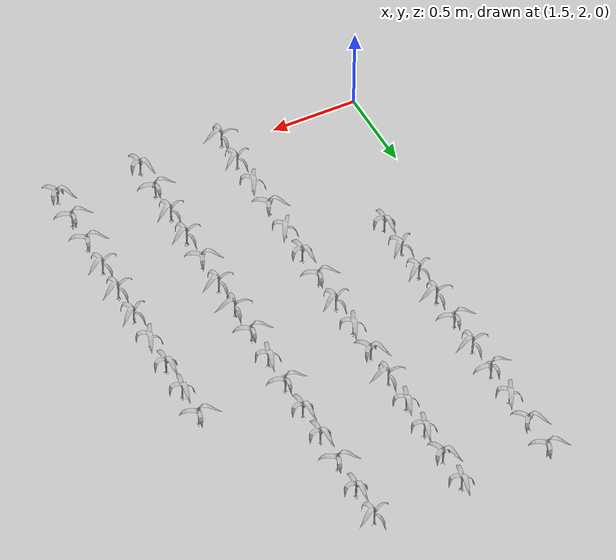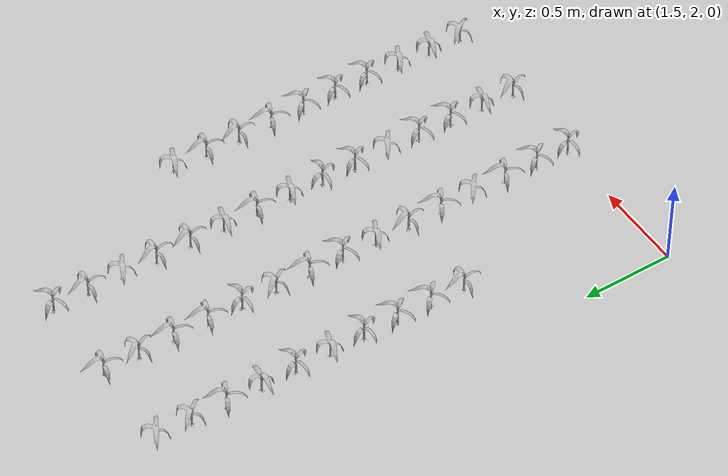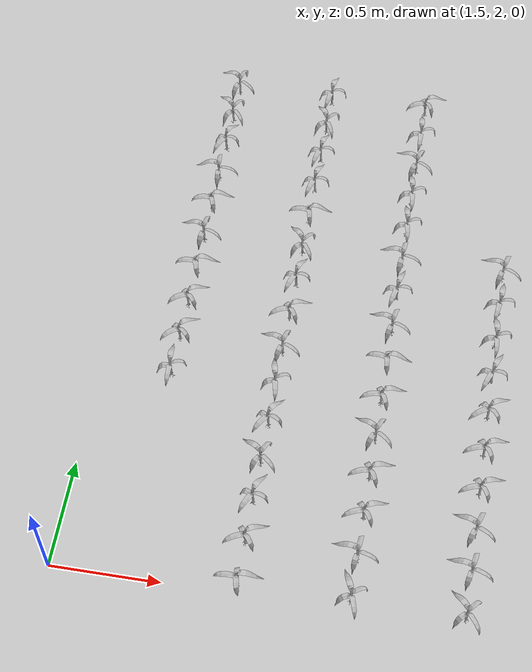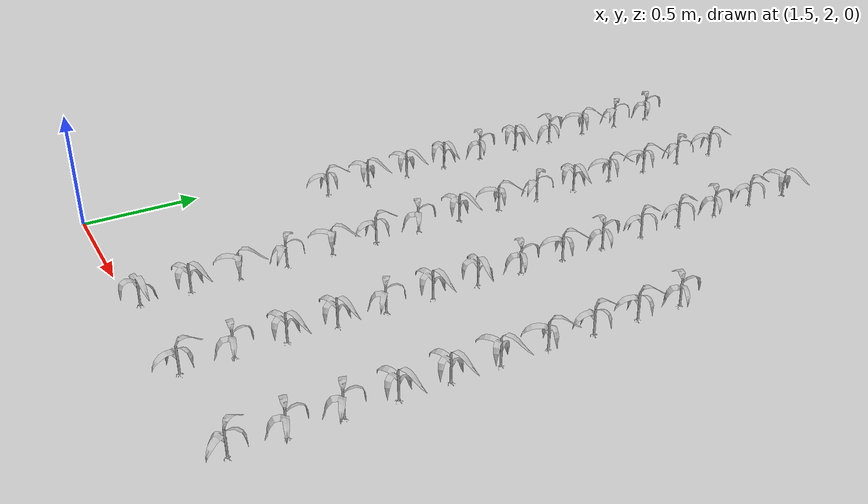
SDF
<sdf version="1.7">
 <world name="default">
  <model name="maize_1.8369094047028893_3.000000000000001">
   <static>1</static>
   <link name="link">
    <inertial>
     <mass>0.2</mass>
     <inertia>
      <ixx>0.166667</ixx>
      <ixy>0</ixy>
      <ixz>0</ixz>
      <iyy>0.166667</iyy>
      <iyz>0</iyz>
      <izz>0.166667</izz>
     </inertia>
    </inertial>
    <collision name="collision">
     <geometry><mesh><uri>model://corn_3/meshes/corn.dae</uri><scale>0.25 0.25 0.25</scale></mesh></geometry>
     <surface>
      <friction><ode><mu>0</mu><mu2>0</mu2></ode></friction>
      <contact><ode><kp>0</kp><kd>0</kd><max_vel>0</max_vel><min_depth>0.002</min_depth></ode></contact>
     </surface>
    </collision>
    <visual name="visual">
     <geometry><mesh><uri>model://corn_3/meshes/corn.dae</uri><scale>0.25 0.25 0.25</scale></mesh></geometry>
    </visual>
    <velocity_decay><linear>0</linear><angular>0</angular></velocity_decay>
   </link>
   <pose>1.83691 3 0.05 0 -0 1.66744</pose>
  </model>
  <model name="maize_1.8369094047028893_3.1950000000000003">
   <static>1</static>
   <link name="link">
    <inertial>
     <mass>0.2</mass>
     <inertia>
      <ixx>0.166667</ixx>
      <ixy>0</ixy>
      <ixz>0</ixz>
      <iyy>0.166667</iyy>
      <iyz>0</iyz>
      <izz>0.166667</izz>
     </inertia>
    </inertial>
    <collision name="collision">
     <geometry><mesh><uri>model://corn_3/meshes/corn.dae</uri><scale>0.25 0.25 0.25</scale></mesh></geometry>
     <surface>
      <friction><ode><mu>0</mu><mu2>0</mu2></ode></friction>
      <contact><ode><kp>0</kp><kd>0</kd><max_vel>0</max_vel><min_depth>0.002</min_depth></ode></contact>
     </surface>
    </collision>
    <visual name="visual">
     <geometry><mesh><uri>model://corn_3/meshes/corn.dae</uri><scale>0.25 0.25 0.25</scale></mesh></geometry>
    </visual>
    <velocity_decay><linear>0</linear><angular>0</angular></velocity_decay>
   </link>
   <pose>1.83691 3.195 0.05 0 -0 0.756437</pose>
  </model>
  <model name="maize_1.8369094047028893_3.3899999999999997">
   <static>1</static>
   <link name="link">
    <inertial>
     <mass>0.2</mass>
     <inertia>
      <ixx>0.166667</ixx>
      <ixy>0</ixy>
      <ixz>0</ixz>
      <iyy>0.166667</iyy>
      <iyz>0</iyz>
      <izz>0.166667</izz>
     </inertia>
    </inertial>
    <collision name="collision">
     <geometry><mesh><uri>model://corn_3/meshes/corn.dae</uri><scale>0.25 0.25 0.25</scale></mesh></geometry>
     <surface>
      <friction><ode><mu>0</mu><mu2>0</mu2></ode></friction>
      <contact><ode><kp>0</kp><kd>0</kd><max_vel>0</max_vel><min_depth>0.002</min_depth></ode></contact>
     </surface>
    </collision>
    <visual name="visual">
     <geometry><mesh><uri>model://corn_3/meshes/corn.dae</uri><scale>0.25 0.25 0.25</scale></mesh></geometry>
    </visual>
    <velocity_decay><linear>0</linear><angular>0</angular></velocity_decay>
   </link>
   <pose>1.83691 3.39 0.05 0 -0 0.617165</pose>
  </model>
  <model name="maize_1.8369094047028893_3.585">
   <static>1</static>
   <link name="link">
    <inertial>
     <mass>0.2</mass>
     <inertia>
      <ixx>0.166667</ixx>
      <ixy>0</ixy>
      <ixz>0</ixz>
      <iyy>0.166667</iyy>
      <iyz>0</iyz>
      <izz>0.166667</izz>
     </inertia>
    </inertial>
    <collision name="collision">
     <geometry><mesh><uri>model://corn_3/meshes/corn.dae</uri><scale>0.25 0.25 0.25</scale></mesh></geometry>
     <surface>
      <friction><ode><mu>0</mu><mu2>0</mu2></ode></friction>
      <contact><ode><kp>0</kp><kd>0</kd><max_vel>0</max_vel><min_depth>0.002</min_depth></ode></contact>
     </surface>
    </collision>
    <visual name="visual">
     <geometry><mesh><uri>model://corn_3/meshes/corn.dae</uri><scale>0.25 0.25 0.25</scale></mesh></geometry>
    </visual>
    <velocity_decay><linear>0</linear><angular>0</angular></velocity_decay>
   </link>
   <pose>1.83691 3.585 0.05 0 -0 0.19842</pose>
  </model>
  <model name="maize_1.8369094047028893_3.7800000000000002">
   <static>1</static>
   <link name="link">
    <inertial>
     <mass>0.2</mass>
     <inertia>
      <ixx>0.166667</ixx>
      <ixy>0</ixy>
      <ixz>0</ixz>
      <iyy>0.166667</iyy>
      <iyz>0</iyz>
      <izz>0.166667</izz>
     </inertia>
    </inertial>
    <collision name="collision">
     <geometry><mesh><uri>model://corn_3/meshes/corn.dae</uri><scale>0.25 0.25 0.25</scale></mesh></geometry>
     <surface>
      <friction><ode><mu>0</mu><mu2>0</mu2></ode></friction>
      <contact><ode><kp>0</kp><kd>0</kd><max_vel>0</max_vel><min_depth>0.002</min_depth></ode></contact>
     </surface>
    </collision>
    <visual name="visual">
     <geometry><mesh><uri>model://corn_3/meshes/corn.dae</uri><scale>0.25 0.25 0.25</scale></mesh></geometry>
    </visual>
    <velocity_decay><linear>0</linear><angular>0</angular></velocity_decay>
   </link>
   <pose>1.83691 3.78 0.05 0 -0 2.90522</pose>
  </model>
  <model name="maize_1.8369094047028893_3.9750000000000005">
   <static>1</static>
   <link name="link">
    <inertial>
     <mass>0.2</mass>
     <inertia>
      <ixx>0.166667</ixx>
      <ixy>0</ixy>
      <ixz>0</ixz>
      <iyy>0.166667</iyy>
      <iyz>0</iyz>
      <izz>0.166667</izz>
     </inertia>
    </inertial>
    <collision name="collision">
     <geometry><mesh><uri>model://corn_3/meshes/corn.dae</uri><scale>0.25 0.25 0.25</scale></mesh></geometry>
     <surface>
      <friction><ode><mu>0</mu><mu2>0</mu2></ode></friction>
      <contact><ode><kp>0</kp><kd>0</kd><max_vel>0</max_vel><min_depth>0.002</min_depth></ode></contact>
     </surface>
    </collision>
    <visual name="visual">
     <geometry><mesh><uri>model://corn_3/meshes/corn.dae</uri><scale>0.25 0.25 0.25</scale></mesh></geometry>
    </visual>
    <velocity_decay><linear>0</linear><angular>0</angular></velocity_decay>
   </link>
   <pose>1.83691 3.975 0.05 0 -0 0.26395</pose>
  </model>
  <model name="maize_1.8369094047028893_4.170000000000001">
   <static>1</static>
   <link name="link">
    <inertial>
     <mass>0.2</mass>
     <inertia>
      <ixx>0.166667</ixx>
      <ixy>0</ixy>
      <ixz>0</ixz>
      <iyy>0.166667</iyy>
      <iyz>0</iyz>
      <izz>0.166667</izz>
     </inertia>
    </inertial>
    <collision name="collision">
     <geometry><mesh><uri>model://corn_3/meshes/corn.dae</uri><scale>0.25 0.25 0.25</scale></mesh></geometry>
     <surface>
      <friction><ode><mu>0</mu><mu2>0</mu2></ode></friction>
      <contact><ode><kp>0</kp><kd>0</kd><max_vel>0</max_vel><min_depth>0.002</min_depth></ode></contact>
     </surface>
    </collision>
    <visual name="visual">
     <geometry><mesh><uri>model://corn_3/meshes/corn.dae</uri><scale>0.25 0.25 0.25</scale></mesh></geometry>
    </visual>
    <velocity_decay><linear>0</linear><angular>0</angular></velocity_decay>
   </link>
   <pose>1.83691 4.17 0.05 0 -0 3.13841</pose>
  </model>
  <model name="maize_1.8369094047028893_4.365000000000001">
   <static>1</static>
   <link name="link">
    <inertial>
     <mass>0.2</mass>
     <inertia>
      <ixx>0.166667</ixx>
      <ixy>0</ixy>
      <ixz>0</ixz>
      <iyy>0.166667</iyy>
      <iyz>0</iyz>
      <izz>0.166667</izz>
     </inertia>
    </inertial>
    <collision name="collision">
     <geometry><mesh><uri>model://corn_3/meshes/corn.dae</uri><scale>0.25 0.25 0.25</scale></mesh></geometry>
     <surface>
      <friction><ode><mu>0</mu><mu2>0</mu2></ode></friction>
      <contact><ode><kp>0</kp><kd>0</kd><max_vel>0</max_vel><min_depth>0.002</min_depth></ode></contact>
     </surface>
    </collision>
    <visual name="visual">
     <geometry><mesh><uri>model://corn_3/meshes/corn.dae</uri><scale>0.25 0.25 0.25</scale></mesh></geometry>
    </visual>
    <velocity_decay><linear>0</linear><angular>0</angular></velocity_decay>
   </link>
   <pose>1.83691 4.365 0.05 0 -0 1.15996</pose>
  </model>
  <model name="maize_1.8369094047028893_4.56">
   <static>1</static>
   <link name="link">
    <inertial>
     <mass>0.2</mass>
     <inertia>
      <ixx>0.166667</ixx>
      <ixy>0</ixy>
      <ixz>0</ixz>
      <iyy>0.166667</iyy>
      <iyz>0</iyz>
      <izz>0.166667</izz>
     </inertia>
    </inertial>
    <collision name="collision">
     <geometry><mesh><uri>model://corn_3/meshes/corn.dae</uri><scale>0.25 0.25 0.25</scale></mesh></geometry>
     <surface>
      <friction><ode><mu>0</mu><mu2>0</mu2></ode></friction>
      <contact><ode><kp>0</kp><kd>0</kd><max_vel>0</max_vel><min_depth>0.002</min_depth></ode></contact>
     </surface>
    </collision>
    <visual name="visual">
     <geometry><mesh><uri>model://corn_3/meshes/corn.dae</uri><scale>0.25 0.25 0.25</scale></mesh></geometry>
    </visual>
    <velocity_decay><linear>0</linear><angular>0</angular></velocity_decay>
   </link>
   <pose>1.83691 4.56 0.05 0 -0 2.37544</pose>
  </model>
  <model name="maize_1.8369094047028893_4.755">
   <static>1</static>
   <link name="link">
    <inertial>
     <mass>0.2</mass>
     <inertia>
      <ixx>0.166667</ixx>
      <ixy>0</ixy>
      <ixz>0</ixz>
      <iyy>0.166667</iyy>
      <iyz>0</iyz>
      <izz>0.166667</izz>
     </inertia>
    </inertial>
    <collision name="collision">
     <geometry><mesh><uri>model://corn_3/meshes/corn.dae</uri><scale>0.25 0.25 0.25</scale></mesh></geometry>
     <surface>
      <friction><ode><mu>0</mu><mu2>0</mu2></ode></friction>
      <contact><ode><kp>0</kp><kd>0</kd><max_vel>0</max_vel><min_depth>0.002</min_depth></ode></contact>
     </surface>
    </collision>
    <visual name="visual">
     <geometry><mesh><uri>model://corn_3/meshes/corn.dae</uri><scale>0.25 0.25 0.25</scale></mesh></geometry>
    </visual>
    <velocity_decay><linear>0</linear><angular>0</angular></velocity_decay>
   </link>
   <pose>1.83691 4.755 0.05 0 -0 2.69329</pose>
  </model>
  <model name="maize_2.3268572397762357_2.0250000000000004">
   <static>1</static>
   <link name="link">
    <inertial>
     <mass>0.2</mass>
     <inertia>
      <ixx>0.166667</ixx>
      <ixy>0</ixy>
      <ixz>0</ixz>
      <iyy>0.166667</iyy>
      <iyz>0</iyz>
      <izz>0.166667</izz>
     </inertia>
    </inertial>
    <collision name="collision">
     <geometry><mesh><uri>model://corn_3/meshes/corn.dae</uri><scale>0.25 0.25 0.25</scale></mesh></geometry>
     <surface>
      <friction><ode><mu>0</mu><mu2>0</mu2></ode></friction>
      <contact><ode><kp>0</kp><kd>0</kd><max_vel>0</max_vel><min_depth>0.002</min_depth></ode></contact>
     </surface>
    </collision>
    <visual name="visual">
     <geometry><mesh><uri>model://corn_3/meshes/corn.dae</uri><scale>0.25 0.25 0.25</scale></mesh></geometry>
    </visual>
    <velocity_decay><linear>0</linear><angular>0</angular></velocity_decay>
   </link>
   <pose>2.32686 2.025 0.05 0 -0 0.130805</pose>
  </model>
  <model name="maize_2.3268572397762357_2.2200000000000006">
   <static>1</static>
   <link name="link">
    <inertial>
     <mass>0.2</mass>
     <inertia>
      <ixx>0.166667</ixx>
      <ixy>0</ixy>
      <ixz>0</ixz>
      <iyy>0.166667</iyy>
      <iyz>0</iyz>
      <izz>0.166667</izz>
     </inertia>
    </inertial>
    <collision name="collision">
     <geometry><mesh><uri>model://corn_3/meshes/corn.dae</uri><scale>0.25 0.25 0.25</scale></mesh></geometry>
     <surface>
      <friction><ode><mu>0</mu><mu2>0</mu2></ode></friction>
      <contact><ode><kp>0</kp><kd>0</kd><max_vel>0</max_vel><min_depth>0.002</min_depth></ode></contact>
     </surface>
    </collision>
    <visual name="visual">
     <geometry><mesh><uri>model://corn_3/meshes/corn.dae</uri><scale>0.25 0.25 0.25</scale></mesh></geometry>
    </visual>
    <velocity_decay><linear>0</linear><angular>0</angular></velocity_decay>
   </link>
   <pose>2.32686 2.22 0.05 0 -0 0.56625</pose>
  </model>
  <model name="maize_2.3268572397762357_2.415">
   <static>1</static>
   <link name="link">
    <inertial>
     <mass>0.2</mass>
     <inertia>
      <ixx>0.166667</ixx>
      <ixy>0</ixy>
      <ixz>0</ixz>
      <iyy>0.166667</iyy>
      <iyz>0</iyz>
      <izz>0.166667</izz>
     </inertia>
    </inertial>
    <collision name="collision">
     <geometry><mesh><uri>model://corn_3/meshes/corn.dae</uri><scale>0.25 0.25 0.25</scale></mesh></geometry>
     <surface>
      <friction><ode><mu>0</mu><mu2>0</mu2></ode></friction>
      <contact><ode><kp>0</kp><kd>0</kd><max_vel>0</max_vel><min_depth>0.002</min_depth></ode></contact>
     </surface>
    </collision>
    <visual name="visual">
     <geometry><mesh><uri>model://corn_3/meshes/corn.dae</uri><scale>0.25 0.25 0.25</scale></mesh></geometry>
    </visual>
    <velocity_decay><linear>0</linear><angular>0</angular></velocity_decay>
   </link>
   <pose>2.32686 2.415 0.05 0 -0 1.18932</pose>
  </model>
  <model name="maize_2.3268572397762357_2.6100000000000003">
   <static>1</static>
   <link name="link">
    <inertial>
     <mass>0.2</mass>
     <inertia>
      <ixx>0.166667</ixx>
      <ixy>0</ixy>
      <ixz>0</ixz>
      <iyy>0.166667</iyy>
      <iyz>0</iyz>
      <izz>0.166667</izz>
     </inertia>
    </inertial>
    <collision name="collision">
     <geometry><mesh><uri>model://corn_3/meshes/corn.dae</uri><scale>0.25 0.25 0.25</scale></mesh></geometry>
     <surface>
      <friction><ode><mu>0</mu><mu2>0</mu2></ode></friction>
      <contact><ode><kp>0</kp><kd>0</kd><max_vel>0</max_vel><min_depth>0.002</min_depth></ode></contact>
     </surface>
    </collision>
    <visual name="visual">
     <geometry><mesh><uri>model://corn_3/meshes/corn.dae</uri><scale>0.25 0.25 0.25</scale></mesh></geometry>
    </visual>
    <velocity_decay><linear>0</linear><angular>0</angular></velocity_decay>
   </link>
   <pose>2.32686 2.61 0.05 0 -0 2.54223</pose>
  </model>
  <model name="maize_2.3268572397762357_2.8050000000000006">
   <static>1</static>
   <link name="link">
    <inertial>
     <mass>0.2</mass>
     <inertia>
      <ixx>0.166667</ixx>
      <ixy>0</ixy>
      <ixz>0</ixz>
      <iyy>0.166667</iyy>
      <iyz>0</iyz>
      <izz>0.166667</izz>
     </inertia>
    </inertial>
    <collision name="collision">
     <geometry><mesh><uri>model://corn_3/meshes/corn.dae</uri><scale>0.25 0.25 0.25</scale></mesh></geometry>
     <surface>
      <friction><ode><mu>0</mu><mu2>0</mu2></ode></friction>
      <contact><ode><kp>0</kp><kd>0</kd><max_vel>0</max_vel><min_depth>0.002</min_depth></ode></contact>
     </surface>
    </collision>
    <visual name="visual">
     <geometry><mesh><uri>model://corn_3/meshes/corn.dae</uri><scale>0.25 0.25 0.25</scale></mesh></geometry>
    </visual>
    <velocity_decay><linear>0</linear><angular>0</angular></velocity_decay>
   </link>
   <pose>2.32686 2.805 0.05 0 -0 1.06028</pose>
  </model>
  <model name="maize_2.3268572397762357_3.000000000000001">
   <static>1</static>
   <link name="link">
    <inertial>
     <mass>0.2</mass>
     <inertia>
      <ixx>0.166667</ixx>
      <ixy>0</ixy>
      <ixz>0</ixz>
      <iyy>0.166667</iyy>
      <iyz>0</iyz>
      <izz>0.166667</izz>
     </inertia>
    </inertial>
    <collision name="collision">
     <geometry><mesh><uri>model://corn_3/meshes/corn.dae</uri><scale>0.25 0.25 0.25</scale></mesh></geometry>
     <surface>
      <friction><ode><mu>0</mu><mu2>0</mu2></ode></friction>
      <contact><ode><kp>0</kp><kd>0</kd><max_vel>0</max_vel><min_depth>0.002</min_depth></ode></contact>
     </surface>
    </collision>
    <visual name="visual">
     <geometry><mesh><uri>model://corn_3/meshes/corn.dae</uri><scale>0.25 0.25 0.25</scale></mesh></geometry>
    </visual>
    <velocity_decay><linear>0</linear><angular>0</angular></velocity_decay>
   </link>
   <pose>2.32686 3 0.05 0 -0 1.82294</pose>
  </model>
  <model name="maize_2.3268572397762357_3.1950000000000003">
   <static>1</static>
   <link name="link">
    <inertial>
     <mass>0.2</mass>
     <inertia>
      <ixx>0.166667</ixx>
      <ixy>0</ixy>
      <ixz>0</ixz>
      <iyy>0.166667</iyy>
      <iyz>0</iyz>
      <izz>0.166667</izz>
     </inertia>
    </inertial>
    <collision name="collision">
     <geometry><mesh><uri>model://corn_3/meshes/corn.dae</uri><scale>0.25 0.25 0.25</scale></mesh></geometry>
     <surface>
      <friction><ode><mu>0</mu><mu2>0</mu2></ode></friction>
      <contact><ode><kp>0</kp><kd>0</kd><max_vel>0</max_vel><min_depth>0.002</min_depth></ode></contact>
     </surface>
    </collision>
    <visual name="visual">
     <geometry><mesh><uri>model://corn_3/meshes/corn.dae</uri><scale>0.25 0.25 0.25</scale></mesh></geometry>
    </visual>
    <velocity_decay><linear>0</linear><angular>0</angular></velocity_decay>
   </link>
   <pose>2.32686 3.195 0.05 0 -0 2.78875</pose>
  </model>
  <model name="maize_2.3268572397762357_3.3899999999999997">
   <static>1</static>
   <link name="link">
    <inertial>
     <mass>0.2</mass>
     <inertia>
      <ixx>0.166667</ixx>
      <ixy>0</ixy>
      <ixz>0</ixz>
      <iyy>0.166667</iyy>
      <iyz>0</iyz>
      <izz>0.166667</izz>
     </inertia>
    </inertial>
    <collision name="collision">
     <geometry><mesh><uri>model://corn_3/meshes/corn.dae</uri><scale>0.25 0.25 0.25</scale></mesh></geometry>
     <surface>
      <friction><ode><mu>0</mu><mu2>0</mu2></ode></friction>
      <contact><ode><kp>0</kp><kd>0</kd><max_vel>0</max_vel><min_depth>0.002</min_depth></ode></contact>
     </surface>
    </collision>
    <visual name="visual">
     <geometry><mesh><uri>model://corn_3/meshes/corn.dae</uri><scale>0.25 0.25 0.25</scale></mesh></geometry>
    </visual>
    <velocity_decay><linear>0</linear><angular>0</angular></velocity_decay>
   </link>
   <pose>2.32686 3.39 0.05 0 -0 0.509069</pose>
  </model>
  <model name="maize_2.3268572397762357_3.585">
   <static>1</static>
   <link name="link">
    <inertial>
     <mass>0.2</mass>
     <inertia>
      <ixx>0.166667</ixx>
      <ixy>0</ixy>
      <ixz>0</ixz>
      <iyy>0.166667</iyy>
      <iyz>0</iyz>
      <izz>0.166667</izz>
     </inertia>
    </inertial>
    <collision name="collision">
     <geometry><mesh><uri>model://corn_3/meshes/corn.dae</uri><scale>0.25 0.25 0.25</scale></mesh></geometry>
     <surface>
      <friction><ode><mu>0</mu><mu2>0</mu2></ode></friction>
      <contact><ode><kp>0</kp><kd>0</kd><max_vel>0</max_vel><min_depth>0.002</min_depth></ode></contact>
     </surface>
    </collision>
    <visual name="visual">
     <geometry><mesh><uri>model://corn_3/meshes/corn.dae</uri><scale>0.25 0.25 0.25</scale></mesh></geometry>
    </visual>
    <velocity_decay><linear>0</linear><angular>0</angular></velocity_decay>
   </link>
   <pose>2.32686 3.585 0.05 0 -0 1.25415</pose>
  </model>
  <model name="maize_2.3268572397762357_3.7800000000000002">
   <static>1</static>
   <link name="link">
    <inertial>
     <mass>0.2</mass>
     <inertia>
      <ixx>0.166667</ixx>
      <ixy>0</ixy>
      <ixz>0</ixz>
      <iyy>0.166667</iyy>
      <iyz>0</iyz>
      <izz>0.166667</izz>
     </inertia>
    </inertial>
    <collision name="collision">
     <geometry><mesh><uri>model://corn_3/meshes/corn.dae</uri><scale>0.25 0.25 0.25</scale></mesh></geometry>
     <surface>
      <friction><ode><mu>0</mu><mu2>0</mu2></ode></friction>
      <contact><ode><kp>0</kp><kd>0</kd><max_vel>0</max_vel><min_depth>0.002</min_depth></ode></contact>
     </surface>
    </collision>
    <visual name="visual">
     <geometry><mesh><uri>model://corn_3/meshes/corn.dae</uri><scale>0.25 0.25 0.25</scale></mesh></geometry>
    </visual>
    <velocity_decay><linear>0</linear><angular>0</angular></velocity_decay>
   </link>
   <pose>2.32686 3.78 0.05 0 -0 2.25817</pose>
  </model>
  <model name="maize_2.3268572397762357_3.9750000000000005">
   <static>1</static>
   <link name="link">
    <inertial>
     <mass>0.2</mass>
     <inertia>
      <ixx>0.166667</ixx>
      <ixy>0</ixy>
      <ixz>0</ixz>
      <iyy>0.166667</iyy>
      <iyz>0</iyz>
      <izz>0.166667</izz>
     </inertia>
    </inertial>
    <collision name="collision">
     <geometry><mesh><uri>model://corn_3/meshes/corn.dae</uri><scale>0.25 0.25 0.25</scale></mesh></geometry>
     <surface>
      <friction><ode><mu>0</mu><mu2>0</mu2></ode></friction>
      <contact><ode><kp>0</kp><kd>0</kd><max_vel>0</max_vel><min_depth>0.002</min_depth></ode></contact>
     </surface>
    </collision>
    <visual name="visual">
     <geometry><mesh><uri>model://corn_3/meshes/corn.dae</uri><scale>0.25 0.25 0.25</scale></mesh></geometry>
    </visual>
    <velocity_decay><linear>0</linear><angular>0</angular></velocity_decay>
   </link>
   <pose>2.32686 3.975 0.05 0 -0 0.135492</pose>
  </model>
  <model name="maize_2.3268572397762357_4.170000000000001">
   <static>1</static>
   <link name="link">
    <inertial>
     <mass>0.2</mass>
     <inertia>
      <ixx>0.166667</ixx>
      <ixy>0</ixy>
      <ixz>0</ixz>
      <iyy>0.166667</iyy>
      <iyz>0</iyz>
      <izz>0.166667</izz>
     </inertia>
    </inertial>
    <collision name="collision">
     <geometry><mesh><uri>model://corn_3/meshes/corn.dae</uri><scale>0.25 0.25 0.25</scale></mesh></geometry>
     <surface>
      <friction><ode><mu>0</mu><mu2>0</mu2></ode></friction>
      <contact><ode><kp>0</kp><kd>0</kd><max_vel>0</max_vel><min_depth>0.002</min_depth></ode></contact>
     </surface>
    </collision>
    <visual name="visual">
     <geometry><mesh><uri>model://corn_3/meshes/corn.dae</uri><scale>0.25 0.25 0.25</scale></mesh></geometry>
    </visual>
    <velocity_decay><linear>0</linear><angular>0</angular></velocity_decay>
   </link>
   <pose>2.32686 4.17 0.05 0 -0 1.33384</pose>
  </model>
  <model name="maize_2.3268572397762357_4.365000000000001">
   <static>1</static>
   <link name="link">
    <inertial>
     <mass>0.2</mass>
     <inertia>
      <ixx>0.166667</ixx>
      <ixy>0</ixy>
      <ixz>0</ixz>
      <iyy>0.166667</iyy>
      <iyz>0</iyz>
      <izz>0.166667</izz>
     </inertia>
    </inertial>
    <collision name="collision">
     <geometry><mesh><uri>model://corn_3/meshes/corn.dae</uri><scale>0.25 0.25 0.25</scale></mesh></geometry>
     <surface>
      <friction><ode><mu>0</mu><mu2>0</mu2></ode></friction>
      <contact><ode><kp>0</kp><kd>0</kd><max_vel>0</max_vel><min_depth>0.002</min_depth></ode></contact>
     </surface>
    </collision>
    <visual name="visual">
     <geometry><mesh><uri>model://corn_3/meshes/corn.dae</uri><scale>0.25 0.25 0.25</scale></mesh></geometry>
    </visual>
    <velocity_decay><linear>0</linear><angular>0</angular></velocity_decay>
   </link>
   <pose>2.32686 4.365 0.05 0 -0 1.36741</pose>
  </model>
  <model name="maize_2.3268572397762357_4.56">
   <static>1</static>
   <link name="link">
    <inertial>
     <mass>0.2</mass>
     <inertia>
      <ixx>0.166667</ixx>
      <ixy>0</ixy>
      <ixz>0</ixz>
      <iyy>0.166667</iyy>
      <iyz>0</iyz>
      <izz>0.166667</izz>
     </inertia>
    </inertial>
    <collision name="collision">
     <geometry><mesh><uri>model://corn_3/meshes/corn.dae</uri><scale>0.25 0.25 0.25</scale></mesh></geometry>
     <surface>
      <friction><ode><mu>0</mu><mu2>0</mu2></ode></friction>
      <contact><ode><kp>0</kp><kd>0</kd><max_vel>0</max_vel><min_depth>0.002</min_depth></ode></contact>
     </surface>
    </collision>
    <visual name="visual">
     <geometry><mesh><uri>model://corn_3/meshes/corn.dae</uri><scale>0.25 0.25 0.25</scale></mesh></geometry>
    </visual>
    <velocity_decay><linear>0</linear><angular>0</angular></velocity_decay>
   </link>
   <pose>2.32686 4.56 0.05 0 -0 2.11924</pose>
  </model>
  <model name="maize_2.3268572397762357_4.755">
   <static>1</static>
   <link name="link">
    <inertial>
     <mass>0.2</mass>
     <inertia>
      <ixx>0.166667</ixx>
      <ixy>0</ixy>
      <ixz>0</ixz>
      <iyy>0.166667</iyy>
      <iyz>0</iyz>
      <izz>0.166667</izz>
     </inertia>
    </inertial>
    <collision name="collision">
     <geometry><mesh><uri>model://corn_3/meshes/corn.dae</uri><scale>0.25 0.25 0.25</scale></mesh></geometry>
     <surface>
      <friction><ode><mu>0</mu><mu2>0</mu2></ode></friction>
      <contact><ode><kp>0</kp><kd>0</kd><max_vel>0</max_vel><min_depth>0.002</min_depth></ode></contact>
     </surface>
    </collision>
    <visual name="visual">
     <geometry><mesh><uri>model://corn_3/meshes/corn.dae</uri><scale>0.25 0.25 0.25</scale></mesh></geometry>
    </visual>
    <velocity_decay><linear>0</linear><angular>0</angular></velocity_decay>
   </link>
   <pose>2.32686 4.755 0.05 0 -0 1.44377</pose>
  </model>
  <model name="maize_2.816066532335432_2.0250000000000004">
   <static>1</static>
   <link name="link">
    <inertial>
     <mass>0.2</mass>
     <inertia>
      <ixx>0.166667</ixx>
      <ixy>0</ixy>
      <ixz>0</ixz>
      <iyy>0.166667</iyy>
      <iyz>0</iyz>
      <izz>0.166667</izz>
     </inertia>
    </inertial>
    <collision name="collision">
     <geometry><mesh><uri>model://corn_3/meshes/corn.dae</uri><scale>0.25 0.25 0.25</scale></mesh></geometry>
     <surface>
      <friction><ode><mu>0</mu><mu2>0</mu2></ode></friction>
      <contact><ode><kp>0</kp><kd>0</kd><max_vel>0</max_vel><min_depth>0.002</min_depth></ode></contact>
     </surface>
    </collision>
    <visual name="visual">
     <geometry><mesh><uri>model://corn_3/meshes/corn.dae</uri><scale>0.25 0.25 0.25</scale></mesh></geometry>
    </visual>
    <velocity_decay><linear>0</linear><angular>0</angular></velocity_decay>
   </link>
   <pose>2.81607 2.025 0.05 0 -0 1.97236</pose>
  </model>
  <model name="maize_2.816066532335432_2.2200000000000006">
   <static>1</static>
   <link name="link">
    <inertial>
     <mass>0.2</mass>
     <inertia>
      <ixx>0.166667</ixx>
      <ixy>0</ixy>
      <ixz>0</ixz>
      <iyy>0.166667</iyy>
      <iyz>0</iyz>
      <izz>0.166667</izz>
     </inertia>
    </inertial>
    <collision name="collision">
     <geometry><mesh><uri>model://corn_3/meshes/corn.dae</uri><scale>0.25 0.25 0.25</scale></mesh></geometry>
     <surface>
      <friction><ode><mu>0</mu><mu2>0</mu2></ode></friction>
      <contact><ode><kp>0</kp><kd>0</kd><max_vel>0</max_vel><min_depth>0.002</min_depth></ode></contact>
     </surface>
    </collision>
    <visual name="visual">
     <geometry><mesh><uri>model://corn_3/meshes/corn.dae</uri><scale>0.25 0.25 0.25</scale></mesh></geometry>
    </visual>
    <velocity_decay><linear>0</linear><angular>0</angular></velocity_decay>
   </link>
   <pose>2.81607 2.22 0.05 0 -0 2.96754</pose>
  </model>
  <model name="maize_2.816066532335432_2.415">
   <static>1</static>
   <link name="link">
    <inertial>
     <mass>0.2</mass>
     <inertia>
      <ixx>0.166667</ixx>
      <ixy>0</ixy>
      <ixz>0</ixz>
      <iyy>0.166667</iyy>
      <iyz>0</iyz>
      <izz>0.166667</izz>
     </inertia>
    </inertial>
    <collision name="collision">
     <geometry><mesh><uri>model://corn_3/meshes/corn.dae</uri><scale>0.25 0.25 0.25</scale></mesh></geometry>
     <surface>
      <friction><ode><mu>0</mu><mu2>0</mu2></ode></friction>
      <contact><ode><kp>0</kp><kd>0</kd><max_vel>0</max_vel><min_depth>0.002</min_depth></ode></contact>
     </surface>
    </collision>
    <visual name="visual">
     <geometry><mesh><uri>model://corn_3/meshes/corn.dae</uri><scale>0.25 0.25 0.25</scale></mesh></geometry>
    </visual>
    <velocity_decay><linear>0</linear><angular>0</angular></velocity_decay>
   </link>
   <pose>2.81607 2.415 0.05 0 -0 0.496587</pose>
  </model>
  <model name="maize_2.816066532335432_2.6100000000000003">
   <static>1</static>
   <link name="link">
    <inertial>
     <mass>0.2</mass>
     <inertia>
      <ixx>0.166667</ixx>
      <ixy>0</ixy>
      <ixz>0</ixz>
      <iyy>0.166667</iyy>
      <iyz>0</iyz>
      <izz>0.166667</izz>
     </inertia>
    </inertial>
    <collision name="collision">
     <geometry><mesh><uri>model://corn_3/meshes/corn.dae</uri><scale>0.25 0.25 0.25</scale></mesh></geometry>
     <surface>
      <friction><ode><mu>0</mu><mu2>0</mu2></ode></friction>
      <contact><ode><kp>0</kp><kd>0</kd><max_vel>0</max_vel><min_depth>0.002</min_depth></ode></contact>
     </surface>
    </collision>
    <visual name="visual">
     <geometry><mesh><uri>model://corn_3/meshes/corn.dae</uri><scale>0.25 0.25 0.25</scale></mesh></geometry>
    </visual>
    <velocity_decay><linear>0</linear><angular>0</angular></velocity_decay>
   </link>
   <pose>2.81607 2.61 0.05 0 -0 0.415168</pose>
  </model>
  <model name="maize_2.816066532335432_2.8050000000000006">
   <static>1</static>
   <link name="link">
    <inertial>
     <mass>0.2</mass>
     <inertia>
      <ixx>0.166667</ixx>
      <ixy>0</ixy>
      <ixz>0</ixz>
      <iyy>0.166667</iyy>
      <iyz>0</iyz>
      <izz>0.166667</izz>
     </inertia>
    </inertial>
    <collision name="collision">
     <geometry><mesh><uri>model://corn_3/meshes/corn.dae</uri><scale>0.25 0.25 0.25</scale></mesh></geometry>
     <surface>
      <friction><ode><mu>0</mu><mu2>0</mu2></ode></friction>
      <contact><ode><kp>0</kp><kd>0</kd><max_vel>0</max_vel><min_depth>0.002</min_depth></ode></contact>
     </surface>
    </collision>
    <visual name="visual">
     <geometry><mesh><uri>model://corn_3/meshes/corn.dae</uri><scale>0.25 0.25 0.25</scale></mesh></geometry>
    </visual>
    <velocity_decay><linear>0</linear><angular>0</angular></velocity_decay>
   </link>
   <pose>2.81607 2.805 0.05 0 -0 2.62615</pose>
  </model>
  <model name="maize_2.816066532335432_3.000000000000001">
   <static>1</static>
   <link name="link">
    <inertial>
     <mass>0.2</mass>
     <inertia>
      <ixx>0.166667</ixx>
      <ixy>0</ixy>
      <ixz>0</ixz>
      <iyy>0.166667</iyy>
      <iyz>0</iyz>
      <izz>0.166667</izz>
     </inertia>
    </inertial>
    <collision name="collision">
     <geometry><mesh><uri>model://corn_3/meshes/corn.dae</uri><scale>0.25 0.25 0.25</scale></mesh></geometry>
     <surface>
      <friction><ode><mu>0</mu><mu2>0</mu2></ode></friction>
      <contact><ode><kp>0</kp><kd>0</kd><max_vel>0</max_vel><min_depth>0.002</min_depth></ode></contact>
     </surface>
    </collision>
    <visual name="visual">
     <geometry><mesh><uri>model://corn_3/meshes/corn.dae</uri><scale>0.25 0.25 0.25</scale></mesh></geometry>
    </visual>
    <velocity_decay><linear>0</linear><angular>0</angular></velocity_decay>
   </link>
   <pose>2.81607 3 0.05 0 -0 0.351154</pose>
  </model>
  <model name="maize_2.816066532335432_3.1950000000000003">
   <static>1</static>
   <link name="link">
    <inertial>
     <mass>0.2</mass>
     <inertia>
      <ixx>0.166667</ixx>
      <ixy>0</ixy>
      <ixz>0</ixz>
      <iyy>0.166667</iyy>
      <iyz>0</iyz>
      <izz>0.166667</izz>
     </inertia>
    </inertial>
    <collision name="collision">
     <geometry><mesh><uri>model://corn_3/meshes/corn.dae</uri><scale>0.25 0.25 0.25</scale></mesh></geometry>
     <surface>
      <friction><ode><mu>0</mu><mu2>0</mu2></ode></friction>
      <contact><ode><kp>0</kp><kd>0</kd><max_vel>0</max_vel><min_depth>0.002</min_depth></ode></contact>
     </surface>
    </collision>
    <visual name="visual">
     <geometry><mesh><uri>model://corn_3/meshes/corn.dae</uri><scale>0.25 0.25 0.25</scale></mesh></geometry>
    </visual>
    <velocity_decay><linear>0</linear><angular>0</angular></velocity_decay>
   </link>
   <pose>2.81607 3.195 0.05 0 -0 0.014359</pose>
  </model>
  <model name="maize_2.816066532335432_3.3899999999999997">
   <static>1</static>
   <link name="link">
    <inertial>
     <mass>0.2</mass>
     <inertia>
      <ixx>0.166667</ixx>
      <ixy>0</ixy>
      <ixz>0</ixz>
      <iyy>0.166667</iyy>
      <iyz>0</iyz>
      <izz>0.166667</izz>
     </inertia>
    </inertial>
    <collision name="collision">
     <geometry><mesh><uri>model://corn_3/meshes/corn.dae</uri><scale>0.25 0.25 0.25</scale></mesh></geometry>
     <surface>
      <friction><ode><mu>0</mu><mu2>0</mu2></ode></friction>
      <contact><ode><kp>0</kp><kd>0</kd><max_vel>0</max_vel><min_depth>0.002</min_depth></ode></contact>
     </surface>
    </collision>
    <visual name="visual">
     <geometry><mesh><uri>model://corn_3/meshes/corn.dae</uri><scale>0.25 0.25 0.25</scale></mesh></geometry>
    </visual>
    <velocity_decay><linear>0</linear><angular>0</angular></velocity_decay>
   </link>
   <pose>2.81607 3.39 0.05 0 -0 2.85033</pose>
  </model>
  <model name="maize_2.816066532335432_3.585">
   <static>1</static>
   <link name="link">
    <inertial>
     <mass>0.2</mass>
     <inertia>
      <ixx>0.166667</ixx>
      <ixy>0</ixy>
      <ixz>0</ixz>
      <iyy>0.166667</iyy>
      <iyz>0</iyz>
      <izz>0.166667</izz>
     </inertia>
    </inertial>
    <collision name="collision">
     <geometry><mesh><uri>model://corn_3/meshes/corn.dae</uri><scale>0.25 0.25 0.25</scale></mesh></geometry>
     <surface>
      <friction><ode><mu>0</mu><mu2>0</mu2></ode></friction>
      <contact><ode><kp>0</kp><kd>0</kd><max_vel>0</max_vel><min_depth>0.002</min_depth></ode></contact>
     </surface>
    </collision>
    <visual name="visual">
     <geometry><mesh><uri>model://corn_3/meshes/corn.dae</uri><scale>0.25 0.25 0.25</scale></mesh></geometry>
    </visual>
    <velocity_decay><linear>0</linear><angular>0</angular></velocity_decay>
   </link>
   <pose>2.81607 3.585 0.05 0 -0 1.39606</pose>
  </model>
  <model name="maize_2.816066532335432_3.7800000000000002">
   <static>1</static>
   <link name="link">
    <inertial>
     <mass>0.2</mass>
     <inertia>
      <ixx>0.166667</ixx>
      <ixy>0</ixy>
      <ixz>0</ixz>
      <iyy>0.166667</iyy>
      <iyz>0</iyz>
      <izz>0.166667</izz>
     </inertia>
    </inertial>
    <collision name="collision">
     <geometry><mesh><uri>model://corn_3/meshes/corn.dae</uri><scale>0.25 0.25 0.25</scale></mesh></geometry>
     <surface>
      <friction><ode><mu>0</mu><mu2>0</mu2></ode></friction>
      <contact><ode><kp>0</kp><kd>0</kd><max_vel>0</max_vel><min_depth>0.002</min_depth></ode></contact>
     </surface>
    </collision>
    <visual name="visual">
     <geometry><mesh><uri>model://corn_3/meshes/corn.dae</uri><scale>0.25 0.25 0.25</scale></mesh></geometry>
    </visual>
    <velocity_decay><linear>0</linear><angular>0</angular></velocity_decay>
   </link>
   <pose>2.81607 3.78 0.05 0 -0 2.97169</pose>
  </model>
  <model name="maize_2.816066532335432_3.9750000000000005">
   <static>1</static>
   <link name="link">
    <inertial>
     <mass>0.2</mass>
     <inertia>
      <ixx>0.166667</ixx>
      <ixy>0</ixy>
      <ixz>0</ixz>
      <iyy>0.166667</iyy>
      <iyz>0</iyz>
      <izz>0.166667</izz>
     </inertia>
    </inertial>
    <collision name="collision">
     <geometry><mesh><uri>model://corn_3/meshes/corn.dae</uri><scale>0.25 0.25 0.25</scale></mesh></geometry>
     <surface>
      <friction><ode><mu>0</mu><mu2>0</mu2></ode></friction>
      <contact><ode><kp>0</kp><kd>0</kd><max_vel>0</max_vel><min_depth>0.002</min_depth></ode></contact>
     </surface>
    </collision>
    <visual name="visual">
     <geometry><mesh><uri>model://corn_3/meshes/corn.dae</uri><scale>0.25 0.25 0.25</scale></mesh></geometry>
    </visual>
    <velocity_decay><linear>0</linear><angular>0</angular></velocity_decay>
   </link>
   <pose>2.81607 3.975 0.05 0 -0 1.7751</pose>
  </model>
  <model name="maize_2.816066532335432_4.170000000000001">
   <static>1</static>
   <link name="link">
    <inertial>
     <mass>0.2</mass>
     <inertia>
      <ixx>0.166667</ixx>
      <ixy>0</ixy>
      <ixz>0</ixz>
      <iyy>0.166667</iyy>
      <iyz>0</iyz>
      <izz>0.166667</izz>
     </inertia>
    </inertial>
    <collision name="collision">
     <geometry><mesh><uri>model://corn_3/meshes/corn.dae</uri><scale>0.25 0.25 0.25</scale></mesh></geometry>
     <surface>
      <friction><ode><mu>0</mu><mu2>0</mu2></ode></friction>
      <contact><ode><kp>0</kp><kd>0</kd><max_vel>0</max_vel><min_depth>0.002</min_depth></ode></contact>
     </surface>
    </collision>
    <visual name="visual">
     <geometry><mesh><uri>model://corn_3/meshes/corn.dae</uri><scale>0.25 0.25 0.25</scale></mesh></geometry>
    </visual>
    <velocity_decay><linear>0</linear><angular>0</angular></velocity_decay>
   </link>
   <pose>2.81607 4.17 0.05 0 -0 1.77242</pose>
  </model>
  <model name="maize_2.816066532335432_4.365000000000001">
   <static>1</static>
   <link name="link">
    <inertial>
     <mass>0.2</mass>
     <inertia>
      <ixx>0.166667</ixx>
      <ixy>0</ixy>
      <ixz>0</ixz>
      <iyy>0.166667</iyy>
      <iyz>0</iyz>
      <izz>0.166667</izz>
     </inertia>
    </inertial>
    <collision name="collision">
     <geometry><mesh><uri>model://corn_3/meshes/corn.dae</uri><scale>0.25 0.25 0.25</scale></mesh></geometry>
     <surface>
      <friction><ode><mu>0</mu><mu2>0</mu2></ode></friction>
      <contact><ode><kp>0</kp><kd>0</kd><max_vel>0</max_vel><min_depth>0.002</min_depth></ode></contact>
     </surface>
    </collision>
    <visual name="visual">
     <geometry><mesh><uri>model://corn_3/meshes/corn.dae</uri><scale>0.25 0.25 0.25</scale></mesh></geometry>
    </visual>
    <velocity_decay><linear>0</linear><angular>0</angular></velocity_decay>
   </link>
   <pose>2.81607 4.365 0.05 0 -0 2.7277</pose>
  </model>
  <model name="maize_2.816066532335432_4.56">
   <static>1</static>
   <link name="link">
    <inertial>
     <mass>0.2</mass>
     <inertia>
      <ixx>0.166667</ixx>
      <ixy>0</ixy>
      <ixz>0</ixz>
      <iyy>0.166667</iyy>
      <iyz>0</iyz>
      <izz>0.166667</izz>
     </inertia>
    </inertial>
    <collision name="collision">
     <geometry><mesh><uri>model://corn_3/meshes/corn.dae</uri><scale>0.25 0.25 0.25</scale></mesh></geometry>
     <surface>
      <friction><ode><mu>0</mu><mu2>0</mu2></ode></friction>
      <contact><ode><kp>0</kp><kd>0</kd><max_vel>0</max_vel><min_depth>0.002</min_depth></ode></contact>
     </surface>
    </collision>
    <visual name="visual">
     <geometry><mesh><uri>model://corn_3/meshes/corn.dae</uri><scale>0.25 0.25 0.25</scale></mesh></geometry>
    </visual>
    <velocity_decay><linear>0</linear><angular>0</angular></velocity_decay>
   </link>
   <pose>2.81607 4.56 0.05 0 -0 1.66859</pose>
  </model>
  <model name="maize_2.816066532335432_4.755">
   <static>1</static>
   <link name="link">
    <inertial>
     <mass>0.2</mass>
     <inertia>
      <ixx>0.166667</ixx>
      <ixy>0</ixy>
      <ixz>0</ixz>
      <iyy>0.166667</iyy>
      <iyz>0</iyz>
      <izz>0.166667</izz>
     </inertia>
    </inertial>
    <collision name="collision">
     <geometry><mesh><uri>model://corn_3/meshes/corn.dae</uri><scale>0.25 0.25 0.25</scale></mesh></geometry>
     <surface>
      <friction><ode><mu>0</mu><mu2>0</mu2></ode></friction>
      <contact><ode><kp>0</kp><kd>0</kd><max_vel>0</max_vel><min_depth>0.002</min_depth></ode></contact>
     </surface>
    </collision>
    <visual name="visual">
     <geometry><mesh><uri>model://corn_3/meshes/corn.dae</uri><scale>0.25 0.25 0.25</scale></mesh></geometry>
    </visual>
    <velocity_decay><linear>0</linear><angular>0</angular></velocity_decay>
   </link>
   <pose>2.81607 4.755 0.05 0 -0 0.472248</pose>
  </model>
  <model name="maize_3.304538114598593_2.0250000000000004">
   <static>1</static>
   <link name="link">
    <inertial>
     <mass>0.2</mass>
     <inertia>
      <ixx>0.166667</ixx>
      <ixy>0</ixy>
      <ixz>0</ixz>
      <iyy>0.166667</iyy>
      <iyz>0</iyz>
      <izz>0.166667</izz>
     </inertia>
    </inertial>
    <collision name="collision">
     <geometry><mesh><uri>model://corn_3/meshes/corn.dae</uri><scale>0.25 0.25 0.25</scale></mesh></geometry>
     <surface>
      <friction><ode><mu>0</mu><mu2>0</mu2></ode></friction>
      <contact><ode><kp>0</kp><kd>0</kd><max_vel>0</max_vel><min_depth>0.002</min_depth></ode></contact>
     </surface>
    </collision>
    <visual name="visual">
     <geometry><mesh><uri>model://corn_3/meshes/corn.dae</uri><scale>0.25 0.25 0.25</scale></mesh></geometry>
    </visual>
    <velocity_decay><linear>0</linear><angular>0</angular></velocity_decay>
   </link>
   <pose>3.30454 2.025 0.05 0 -0 2.315</pose>
  </model>
  <model name="maize_3.304538114598593_2.2200000000000006">
   <static>1</static>
   <link name="link">
    <inertial>
     <mass>0.2</mass>
     <inertia>
      <ixx>0.166667</ixx>
      <ixy>0</ixy>
      <ixz>0</ixz>
      <iyy>0.166667</iyy>
      <iyz>0</iyz>
      <izz>0.166667</izz>
     </inertia>
    </inertial>
    <collision name="collision">
     <geometry><mesh><uri>model://corn_3/meshes/corn.dae</uri><scale>0.25 0.25 0.25</scale></mesh></geometry>
     <surface>
      <friction><ode><mu>0</mu><mu2>0</mu2></ode></friction>
      <contact><ode><kp>0</kp><kd>0</kd><max_vel>0</max_vel><min_depth>0.002</min_depth></ode></contact>
     </surface>
    </collision>
    <visual name="visual">
     <geometry><mesh><uri>model://corn_3/meshes/corn.dae</uri><scale>0.25 0.25 0.25</scale></mesh></geometry>
    </visual>
    <velocity_decay><linear>0</linear><angular>0</angular></velocity_decay>
   </link>
   <pose>3.30454 2.22 0.05 0 -0 2.91213</pose>
  </model>
  <model name="maize_3.304538114598593_2.415">
   <static>1</static>
   <link name="link">
    <inertial>
     <mass>0.2</mass>
     <inertia>
      <ixx>0.166667</ixx>
      <ixy>0</ixy>
      <ixz>0</ixz>
      <iyy>0.166667</iyy>
      <iyz>0</iyz>
      <izz>0.166667</izz>
     </inertia>
    </inertial>
    <collision name="collision">
     <geometry><mesh><uri>model://corn_3/meshes/corn.dae</uri><scale>0.25 0.25 0.25</scale></mesh></geometry>
     <surface>
      <friction><ode><mu>0</mu><mu2>0</mu2></ode></friction>
      <contact><ode><kp>0</kp><kd>0</kd><max_vel>0</max_vel><min_depth>0.002</min_depth></ode></contact>
     </surface>
    </collision>
    <visual name="visual">
     <geometry><mesh><uri>model://corn_3/meshes/corn.dae</uri><scale>0.25 0.25 0.25</scale></mesh></geometry>
    </visual>
    <velocity_decay><linear>0</linear><angular>0</angular></velocity_decay>
   </link>
   <pose>3.30454 2.415 0.05 0 -0 2.74897</pose>
  </model>
  <model name="maize_3.304538114598593_2.6100000000000003">
   <static>1</static>
   <link name="link">
    <inertial>
     <mass>0.2</mass>
     <inertia>
      <ixx>0.166667</ixx>
      <ixy>0</ixy>
      <ixz>0</ixz>
      <iyy>0.166667</iyy>
      <iyz>0</iyz>
      <izz>0.166667</izz>
     </inertia>
    </inertial>
    <collision name="collision">
     <geometry><mesh><uri>model://corn_3/meshes/corn.dae</uri><scale>0.25 0.25 0.25</scale></mesh></geometry>
     <surface>
      <friction><ode><mu>0</mu><mu2>0</mu2></ode></friction>
      <contact><ode><kp>0</kp><kd>0</kd><max_vel>0</max_vel><min_depth>0.002</min_depth></ode></contact>
     </surface>
    </collision>
    <visual name="visual">
     <geometry><mesh><uri>model://corn_3/meshes/corn.dae</uri><scale>0.25 0.25 0.25</scale></mesh></geometry>
    </visual>
    <velocity_decay><linear>0</linear><angular>0</angular></velocity_decay>
   </link>
   <pose>3.30454 2.61 0.05 0 -0 0.466581</pose>
  </model>
  <model name="maize_3.304538114598593_2.8050000000000006">
   <static>1</static>
   <link name="link">
    <inertial>
     <mass>0.2</mass>
     <inertia>
      <ixx>0.166667</ixx>
      <ixy>0</ixy>
      <ixz>0</ixz>
      <iyy>0.166667</iyy>
      <iyz>0</iyz>
      <izz>0.166667</izz>
     </inertia>
    </inertial>
    <collision name="collision">
     <geometry><mesh><uri>model://corn_3/meshes/corn.dae</uri><scale>0.25 0.25 0.25</scale></mesh></geometry>
     <surface>
      <friction><ode><mu>0</mu><mu2>0</mu2></ode></friction>
      <contact><ode><kp>0</kp><kd>0</kd><max_vel>0</max_vel><min_depth>0.002</min_depth></ode></contact>
     </surface>
    </collision>
    <visual name="visual">
     <geometry><mesh><uri>model://corn_3/meshes/corn.dae</uri><scale>0.25 0.25 0.25</scale></mesh></geometry>
    </visual>
    <velocity_decay><linear>0</linear><angular>0</angular></velocity_decay>
   </link>
   <pose>3.30454 2.805 0.05 0 -0 0.441794</pose>
  </model>
  <model name="maize_3.304538114598593_3.000000000000001">
   <static>1</static>
   <link name="link">
    <inertial>
     <mass>0.2</mass>
     <inertia>
      <ixx>0.166667</ixx>
      <ixy>0</ixy>
      <ixz>0</ixz>
      <iyy>0.166667</iyy>
      <iyz>0</iyz>
      <izz>0.166667</izz>
     </inertia>
    </inertial>
    <collision name="collision">
     <geometry><mesh><uri>model://corn_3/meshes/corn.dae</uri><scale>0.25 0.25 0.25</scale></mesh></geometry>
     <surface>
      <friction><ode><mu>0</mu><mu2>0</mu2></ode></friction>
      <contact><ode><kp>0</kp><kd>0</kd><max_vel>0</max_vel><min_depth>0.002</min_depth></ode></contact>
     </surface>
    </collision>
    <visual name="visual">
     <geometry><mesh><uri>model://corn_3/meshes/corn.dae</uri><scale>0.25 0.25 0.25</scale></mesh></geometry>
    </visual>
    <velocity_decay><linear>0</linear><angular>0</angular></velocity_decay>
   </link>
   <pose>3.30454 3 0.05 0 -0 0.671131</pose>
  </model>
  <model name="maize_3.304538114598593_3.1950000000000003">
   <static>1</static>
   <link name="link">
    <inertial>
     <mass>0.2</mass>
     <inertia>
      <ixx>0.166667</ixx>
      <ixy>0</ixy>
      <ixz>0</ixz>
      <iyy>0.166667</iyy>
      <iyz>0</iyz>
      <izz>0.166667</izz>
     </inertia>
    </inertial>
    <collision name="collision">
     <geometry><mesh><uri>model://corn_3/meshes/corn.dae</uri><scale>0.25 0.25 0.25</scale></mesh></geometry>
     <surface>
      <friction><ode><mu>0</mu><mu2>0</mu2></ode></friction>
      <contact><ode><kp>0</kp><kd>0</kd><max_vel>0</max_vel><min_depth>0.002</min_depth></ode></contact>
     </surface>
    </collision>
    <visual name="visual">
     <geometry><mesh><uri>model://corn_3/meshes/corn.dae</uri><scale>0.25 0.25 0.25</scale></mesh></geometry>
    </visual>
    <velocity_decay><linear>0</linear><angular>0</angular></velocity_decay>
   </link>
   <pose>3.30454 3.195 0.05 0 -0 1.25952</pose>
  </model>
  <model name="maize_3.304538114598593_3.3899999999999997">
   <static>1</static>
   <link name="link">
    <inertial>
     <mass>0.2</mass>
     <inertia>
      <ixx>0.166667</ixx>
      <ixy>0</ixy>
      <ixz>0</ixz>
      <iyy>0.166667</iyy>
      <iyz>0</iyz>
      <izz>0.166667</izz>
     </inertia>
    </inertial>
    <collision name="collision">
     <geometry><mesh><uri>model://corn_3/meshes/corn.dae</uri><scale>0.25 0.25 0.25</scale></mesh></geometry>
     <surface>
      <friction><ode><mu>0</mu><mu2>0</mu2></ode></friction>
      <contact><ode><kp>0</kp><kd>0</kd><max_vel>0</max_vel><min_depth>0.002</min_depth></ode></contact>
     </surface>
    </collision>
    <visual name="visual">
     <geometry><mesh><uri>model://corn_3/meshes/corn.dae</uri><scale>0.25 0.25 0.25</scale></mesh></geometry>
    </visual>
    <velocity_decay><linear>0</linear><angular>0</angular></velocity_decay>
   </link>
   <pose>3.30454 3.39 0.05 0 -0 1.73317</pose>
  </model>
  <model name="maize_3.304538114598593_3.585">
   <static>1</static>
   <link name="link">
    <inertial>
     <mass>0.2</mass>
     <inertia>
      <ixx>0.166667</ixx>
      <ixy>0</ixy>
      <ixz>0</ixz>
      <iyy>0.166667</iyy>
      <iyz>0</iyz>
      <izz>0.166667</izz>
     </inertia>
    </inertial>
    <collision name="collision">
     <geometry><mesh><uri>model://corn_3/meshes/corn.dae</uri><scale>0.25 0.25 0.25</scale></mesh></geometry>
     <surface>
      <friction><ode><mu>0</mu><mu2>0</mu2></ode></friction>
      <contact><ode><kp>0</kp><kd>0</kd><max_vel>0</max_vel><min_depth>0.002</min_depth></ode></contact>
     </surface>
    </collision>
    <visual name="visual">
     <geometry><mesh><uri>model://corn_3/meshes/corn.dae</uri><scale>0.25 0.25 0.25</scale></mesh></geometry>
    </visual>
    <velocity_decay><linear>0</linear><angular>0</angular></velocity_decay>
   </link>
   <pose>3.30454 3.585 0.05 0 -0 1.51334</pose>
  </model>
  <model name="maize_3.304538114598593_3.7800000000000002">
   <static>1</static>
   <link name="link">
    <inertial>
     <mass>0.2</mass>
     <inertia>
      <ixx>0.166667</ixx>
      <ixy>0</ixy>
      <ixz>0</ixz>
      <iyy>0.166667</iyy>
      <iyz>0</iyz>
      <izz>0.166667</izz>
     </inertia>
    </inertial>
    <collision name="collision">
     <geometry><mesh><uri>model://corn_3/meshes/corn.dae</uri><scale>0.25 0.25 0.25</scale></mesh></geometry>
     <surface>
      <friction><ode><mu>0</mu><mu2>0</mu2></ode></friction>
      <contact><ode><kp>0</kp><kd>0</kd><max_vel>0</max_vel><min_depth>0.002</min_depth></ode></contact>
     </surface>
    </collision>
    <visual name="visual">
     <geometry><mesh><uri>model://corn_3/meshes/corn.dae</uri><scale>0.25 0.25 0.25</scale></mesh></geometry>
    </visual>
    <velocity_decay><linear>0</linear><angular>0</angular></velocity_decay>
   </link>
   <pose>3.30454 3.78 0.05 0 -0 2.80532</pose>
  </model>
 </world>
</sdf>
